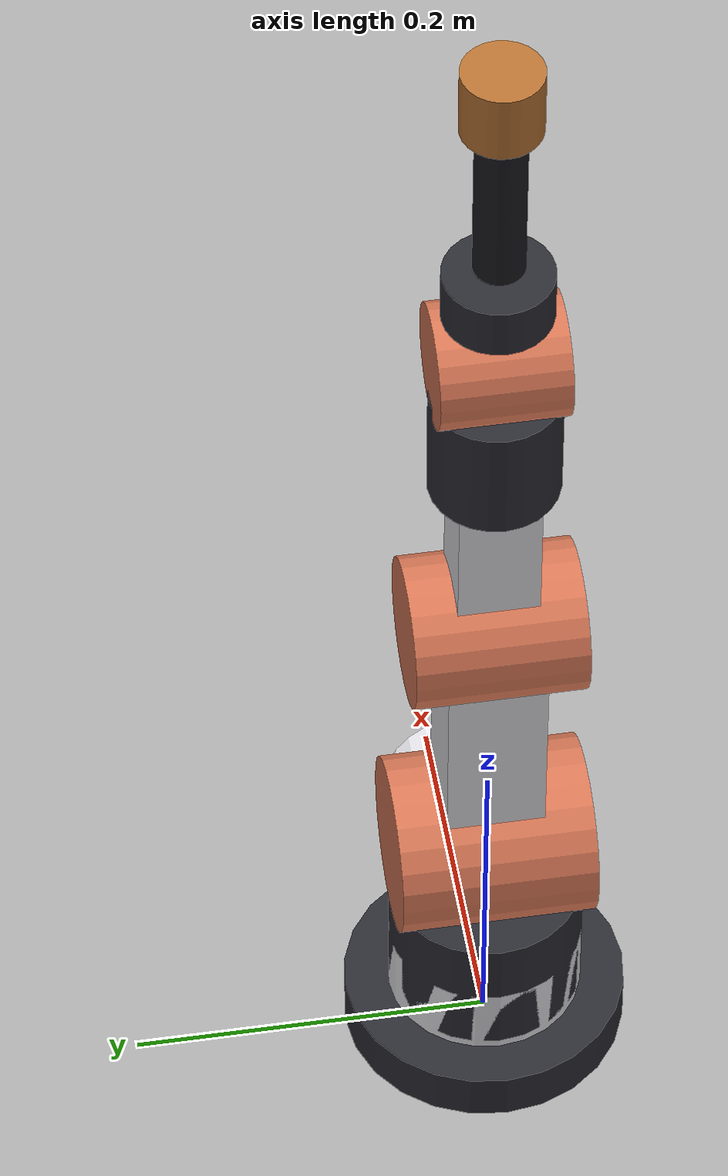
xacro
<?xml version="1.0"?>
<!-- One weld_arm at the origin, for validating the geometry. -->
<robot name="single_arm" xmlns:xacro="http://www.ros.org/wiki/xacro">
  <xacro:include filename="$(find weld_cell)/urdf/weld_arm.xacro"/>
  <link name="world"/>
  <xacro:weld_arm prefix="a_" parent="world" x="0" y="0" z="0" yaw="0"/>
</robot>

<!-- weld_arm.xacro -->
<robot xmlns:xacro="http://www.ros.org/wiki/xacro">

  <material name="wc_link"><color rgba="0.90 0.90 0.92 1"/></material>
  <material name="wc_joint"><color rgba="0.17 0.17 0.20 1"/></material>
  <material name="wc_accent"><color rgba="0.85 0.47 0.34 1"/></material>
  <material name="wc_torch"><color rgba="0.10 0.10 0.12 1"/></material>
  <material name="wc_copper"><color rgba="0.72 0.45 0.20 1"/></material>

  <!-- a motor housing: cylinder aligned to a joint axis (rpy picks the axis) -->
  <xacro:macro name="wc_motor" params="radius ln rpy:='0 0 0' mat:=wc_joint">
    <visual><origin xyz="0 0 0" rpy="${rpy}"/>
      <geometry><cylinder radius="${radius}" length="${ln}"/></geometry>
      <material name="${mat}"/></visual>
    <collision><origin xyz="0 0 0" rpy="${rpy}"/>
      <geometry><cylinder radius="${radius}" length="${ln}"/></geometry></collision>
  </xacro:macro>

  <!-- a link segment: a box running from the joint (+Z) to the next -->
  <xacro:macro name="wc_seg" params="w ln mat:=wc_link">
    <visual><origin xyz="0 0 ${ln/2}"/>
      <geometry><box size="${w} ${w} ${ln}"/></geometry>
      <material name="${mat}"/></visual>
    <collision><origin xyz="0 0 ${ln/2}"/>
      <geometry><box size="${w} ${w} ${ln}"/></geometry></collision>
  </xacro:macro>

  <xacro:macro name="wc_inertia" params="mass">
    <inertial><mass value="${mass}"/>
      <inertia ixx="0.002" iyy="0.002" izz="0.002" ixy="0" ixz="0" iyz="0"/>
    </inertial>
  </xacro:macro>

  <xacro:macro name="weld_arm" params="prefix parent x y z yaw color:=wc_accent">
    <xacro:property name="pi2" value="1.5708"/>
    <xacro:property name="waist_h" value="0.08"/>
    <xacro:property name="upper" value="0.18"/>
    <xacro:property name="fore" value="0.15"/>
    <xacro:property name="wrist" value="0.06"/>
    <xacro:property name="jl" value="2.9"/>

    <joint name="${prefix}anchor" type="fixed">
      <parent link="${parent}"/><child link="${prefix}base_link"/>
      <origin xyz="${x} ${y} ${z}" rpy="0 0 ${yaw}"/>
    </joint>

    <!-- ribbed base + riser -->
    <link name="${prefix}base_link">
      <visual><origin xyz="0 0 0.015"/>
        <geometry><cylinder radius="0.08" length="0.03"/></geometry>
        <material name="wc_joint"/></visual>
      <visual><origin xyz="0 0 0.05"/>
        <geometry><cylinder radius="0.055" length="0.05"/></geometry>
        <material name="wc_link"/></visual>
      <collision><origin xyz="0 0 0.03"/>
        <geometry><cylinder radius="0.08" length="0.06"/></geometry></collision>
      <xacro:wc_inertia mass="1.5"/>
    </link>

    <!-- joint1 waist (Z): waist can + shoulder yoke -->
    <link name="${prefix}link1">
      <xacro:wc_motor radius="0.055" ln="${waist_h}"/>
      <visual><origin xyz="0.03 0 ${waist_h*0.6}" rpy="0 ${pi2} 0"/>
        <geometry><cylinder radius="0.045" length="0.09"/></geometry>
        <material name="wc_link"/></visual>
      <xacro:wc_inertia mass="0.8"/>
    </link>
    <joint name="${prefix}joint1" type="revolute">
      <parent link="${prefix}base_link"/><child link="${prefix}link1"/>
      <origin xyz="0 0 0.075"/><axis xyz="0 0 1"/>
      <limit lower="-${jl}" upper="${jl}" effort="30" velocity="2.0"/>
    </joint>

    <!-- joint2 shoulder (Y): shoulder motor + upper arm -->
    <link name="${prefix}link2">
      <xacro:wc_motor radius="0.05" ln="0.11" rpy="${pi2} 0 0" mat="${color}"/>
      <xacro:wc_seg w="0.055" ln="${upper}"/>
      <xacro:wc_inertia mass="0.8"/>
    </link>
    <joint name="${prefix}joint2" type="revolute">
      <parent link="${prefix}link1"/><child link="${prefix}link2"/>
      <origin xyz="0 0 ${waist_h}"/><axis xyz="0 1 0"/>
      <limit lower="-${jl}" upper="${jl}" effort="30" velocity="2.0"/>
    </joint>

    <!-- joint3 elbow (Y): elbow motor + forearm -->
    <link name="${prefix}link3">
      <xacro:wc_motor radius="0.042" ln="0.095" rpy="${pi2} 0 0" mat="${color}"/>
      <xacro:wc_seg w="0.045" ln="${fore}"/>
      <xacro:wc_inertia mass="0.6"/>
    </link>
    <joint name="${prefix}joint3" type="revolute">
      <parent link="${prefix}link2"/><child link="${prefix}link3"/>
      <origin xyz="0 0 ${upper}"/><axis xyz="0 1 0"/>
      <limit lower="-${jl}" upper="${jl}" effort="20" velocity="2.0"/>
    </joint>

    <!-- joint4 wrist roll (Z) -->
    <link name="${prefix}link4">
      <xacro:wc_motor radius="0.036" ln="0.07"/>
      <xacro:wc_seg w="0.04" ln="${wrist}"/>
      <xacro:wc_inertia mass="0.3"/>
    </link>
    <joint name="${prefix}joint4" type="revolute">
      <parent link="${prefix}link3"/><child link="${prefix}link4"/>
      <origin xyz="0 0 ${fore}"/><axis xyz="0 0 1"/>
      <limit lower="-${jl}" upper="${jl}" effort="10" velocity="2.5"/>
    </joint>

    <!-- joint5 wrist pitch (Y) -->
    <link name="${prefix}link5">
      <xacro:wc_motor radius="0.034" ln="0.07" rpy="${pi2} 0 0" mat="${color}"/>
      <xacro:wc_seg w="0.035" ln="0.05"/>
      <xacro:wc_inertia mass="0.2"/>
    </link>
    <joint name="${prefix}joint5" type="revolute">
      <parent link="${prefix}link4"/><child link="${prefix}link5"/>
      <origin xyz="0 0 ${wrist}"/><axis xyz="0 1 0"/>
      <limit lower="-${jl}" upper="${jl}" effort="10" velocity="2.5"/>
    </joint>

    <!-- joint6 tool roll (Z): flange + welding torch -->
    <link name="${prefix}tool0">
      <xacro:wc_motor radius="0.03" ln="0.03"/>
      <visual><origin xyz="0 0 0.07"/>
        <geometry><cylinder radius="0.014" length="0.10"/></geometry>
        <material name="wc_torch"/></visual>
      <visual><origin xyz="0 0 0.14"/>
        <geometry><cylinder radius="0.022" length="0.04"/></geometry>
        <material name="wc_copper"/></visual>
      <collision><origin xyz="0 0 0.08"/>
        <geometry><cylinder radius="0.03" length="0.18"/></geometry></collision>
      <xacro:wc_inertia mass="0.2"/>
    </link>
    <joint name="${prefix}joint6" type="revolute">
      <parent link="${prefix}link5"/><child link="${prefix}tool0"/>
      <origin xyz="0 0 0.05"/><axis xyz="0 0 1"/>
      <limit lower="-${jl}" upper="${jl}" effort="10" velocity="2.5"/>
    </joint>

    <ros2_control name="${prefix}hw" type="system">
      <hardware><plugin>mock_components/GenericSystem</plugin></hardware>
      <xacro:macro name="ji" params="jn">
        <joint name="${jn}">
          <command_interface name="position"/>
          <state_interface name="position"/>
          <state_interface name="velocity"/>
        </joint>
      </xacro:macro>
      <xacro:ji jn="${prefix}joint1"/><xacro:ji jn="${prefix}joint2"/>
      <xacro:ji jn="${prefix}joint3"/><xacro:ji jn="${prefix}joint4"/>
      <xacro:ji jn="${prefix}joint5"/><xacro:ji jn="${prefix}joint6"/>
    </ros2_control>
  </xacro:macro>
</robot>
